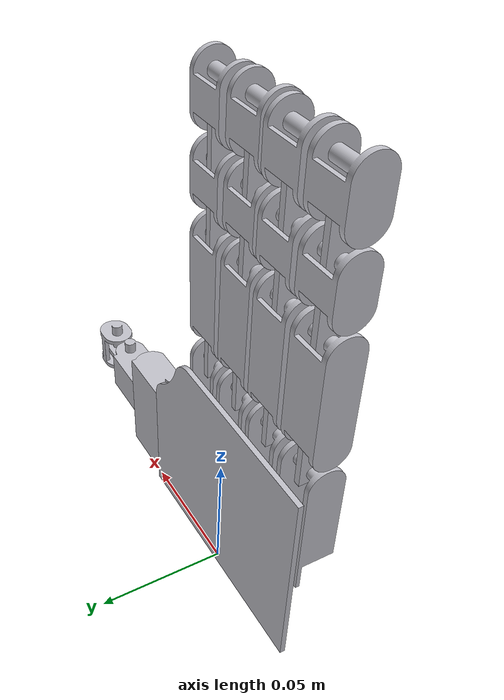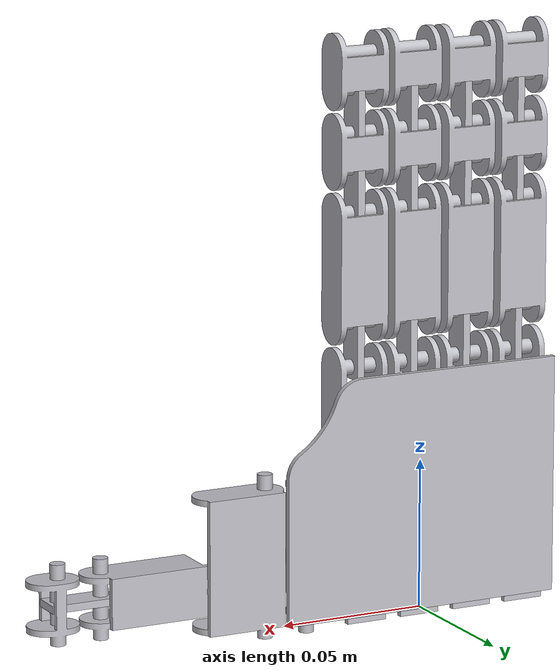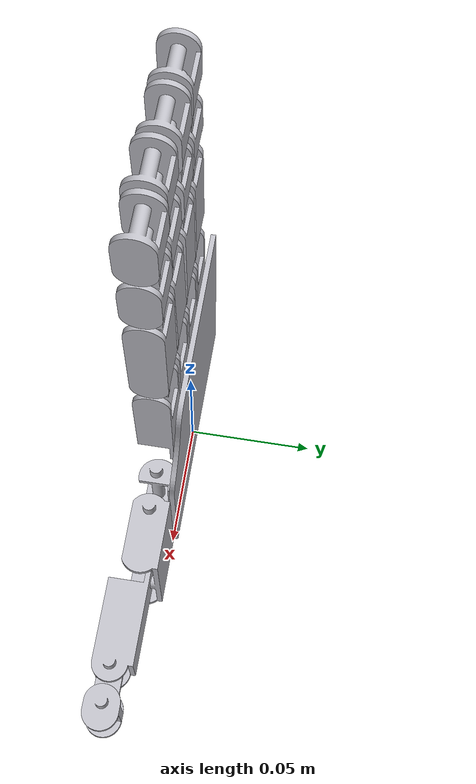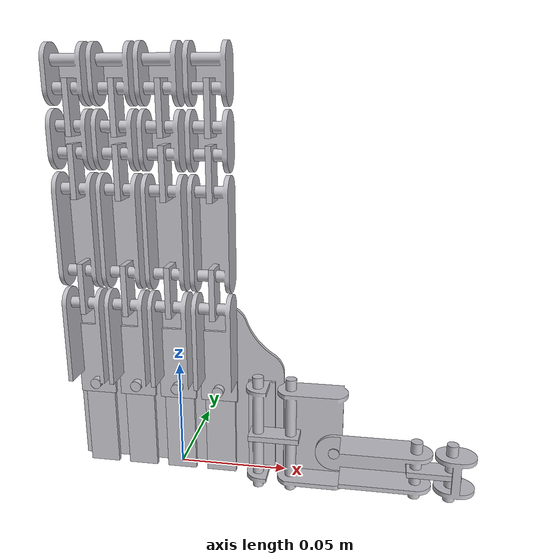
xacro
<?xml version="1.0" ?>
<robot name="hand" xmlns:xacro="http://www.ros.org/wiki/xacro">

<xacro:include filename="$(find hand_description)/urdf/materials.xacro" />
<xacro:include filename="$(find hand_description)/urdf/hand.trans" />
<xacro:include filename="$(find hand_description)/urdf/hand.gazebo" />
<link name="base_link">
  <inertial>
    <origin rpy="0 0 0" xyz="-0.0018927237158815745 0.0009999999999999855 0.038608291526940605"/>
    <mass value="0.1176699159976567"/>
    <inertia ixx="6e-05" ixy="-0.0" ixz="7e-06" iyy="0.000149" iyz="0.0" izz="8.9e-05"/>
  </inertial>
  <visual>
    <origin rpy="0 0 0" xyz="0 0 0"/>
    <geometry>
      <mesh filename="package://hand_description/meshes/base_link.stl" scale="0.001 0.001 0.001"/>
    </geometry>
    <material name="steel_satin"/>
  </visual>
  <collision>
    <origin rpy="0 0 0" xyz="0 0 0"/>
    <geometry>
      <mesh filename="package://hand_description/meshes/base_link.stl" scale="0.001 0.001 0.001"/>
    </geometry>
  </collision>
</link>

<link name="cmc_link_v4_1">
  <inertial>
    <origin rpy="0 0 0" xyz="-0.00048645427795625945 -0.004769447524329848 -6.493517695722872e-06"/>
    <mass value="0.018416700517789007"/>
    <inertia ixx="5e-06" ixy="-0.0" ixz="0.0" iyy="5e-06" iyz="-0.0" izz="0.0"/>
  </inertial>
  <visual>
    <origin rpy="0 0 0" xyz="-0.039 0.0 -0.0225"/>
    <geometry>
      <mesh filename="package://hand_description/meshes/cmc_link_v4_1.stl" scale="0.001 0.001 0.001"/>
    </geometry>
    <material name="steel_satin"/>
  </visual>
  <collision>
    <origin rpy="0 0 0" xyz="-0.039 0.0 -0.0225"/>
    <geometry>
      <mesh filename="package://hand_description/meshes/cmc_link_v4_1.stl" scale="0.001 0.001 0.001"/>
    </geometry>
  </collision>
</link>

<link name="t_connector_1_v1_1">
  <inertial>
    <origin rpy="0 0 0" xyz="0.007499999970143861 -1.312864400526692e-11 -0.0012499999999999768"/>
    <mass value="0.00374307805216622"/>
    <inertia ixx="0.0" ixy="-0.0" ixz="-0.0" iyy="0.0" iyz="-0.0" izz="0.0"/>
  </inertial>
  <visual>
    <origin rpy="0 0 0" xyz="-0.03825 0.007 -0.0225"/>
    <geometry>
      <mesh filename="package://hand_description/meshes/t_connector_1_v1_1.stl" scale="0.001 0.001 0.001"/>
    </geometry>
    <material name="steel_satin"/>
  </visual>
  <collision>
    <origin rpy="0 0 0" xyz="-0.03825 0.007 -0.0225"/>
    <geometry>
      <mesh filename="package://hand_description/meshes/t_connector_1_v1_1.stl" scale="0.001 0.001 0.001"/>
    </geometry>
  </collision>
</link>

<link name="t_mcp_v5_1">
  <inertial>
    <origin rpy="0 0 0" xyz="0.007807400362975329 0.002936289856962501 -0.00016613310844226098"/>
    <mass value="0.03943050014537037"/>
    <inertia ixx="1.1e-05" ixy="-0.0" ixz="0.0" iyy="1.3e-05" iyz="-0.0" izz="3e-06"/>
  </inertial>
  <visual>
    <origin rpy="0 0 0" xyz="-0.05325 0.007 -0.0225"/>
    <geometry>
      <mesh filename="package://hand_description/meshes/t_mcp_v5_1.stl" scale="0.001 0.001 0.001"/>
    </geometry>
    <material name="steel_satin"/>
  </visual>
  <collision>
    <origin rpy="0 0 0" xyz="-0.05325 0.007 -0.0225"/>
    <geometry>
      <mesh filename="package://hand_description/meshes/t_mcp_v5_1.stl" scale="0.001 0.001 0.001"/>
    </geometry>
  </collision>
</link>

<link name="t_pip_link_v5_1">
  <inertial>
    <origin rpy="0 0 0" xyz="0.021556157971685322 -0.006243616814845158 2.555247680113837e-15"/>
    <mass value="0.03216718051096679"/>
    <inertia ixx="2e-06" ixy="1e-06" ixz="0.0" iyy="7e-06" iyz="-0.0" izz="6e-06"/>
  </inertial>
  <visual>
    <origin rpy="0 0 0" xyz="-0.072947 0.004197 -0.014"/>
    <geometry>
      <mesh filename="package://hand_description/meshes/t_pip_link_v5_1.stl" scale="0.001 0.001 0.001"/>
    </geometry>
    <material name="steel_satin"/>
  </visual>
  <collision>
    <origin rpy="0 0 0" xyz="-0.072947 0.004197 -0.014"/>
    <geometry>
      <mesh filename="package://hand_description/meshes/t_pip_link_v5_1.stl" scale="0.001 0.001 0.001"/>
    </geometry>
  </collision>
</link>

<link name="t_connector_2_v1_1">
  <inertial>
    <origin rpy="0 0 0" xyz="0.00749969926025644 3.0084577047270744e-07 -0.0002499999999999603"/>
    <mass value="0.00374307805216622"/>
    <inertia ixx="0.0" ixy="0.0" ixz="-0.0" iyy="0.0" iyz="-0.0" izz="0.0"/>
  </inertial>
  <visual>
    <origin rpy="0 0 0" xyz="-0.108947 0.013197 -0.014"/>
    <geometry>
      <mesh filename="package://hand_description/meshes/t_connector_2_v1_1.stl" scale="0.001 0.001 0.001"/>
    </geometry>
    <material name="steel_satin"/>
  </visual>
  <collision>
    <origin rpy="0 0 0" xyz="-0.108947 0.013197 -0.014"/>
    <geometry>
      <mesh filename="package://hand_description/meshes/t_connector_2_v1_1.stl" scale="0.001 0.001 0.001"/>
    </geometry>
  </collision>
</link>

<link name="t_tip_v2_1">
  <inertial>
    <origin rpy="0 0 0" xyz="0.001140939821871606 7.444969044555216e-08 0.0015000000000000378"/>
    <mass value="0.011962131611831003"/>
    <inertia ixx="1e-06" ixy="-0.0" ixz="0.0" iyy="1e-06" iyz="0.0" izz="0.0"/>
  </inertial>
  <visual>
    <origin rpy="0 0 0" xyz="-0.123947 0.013197 -0.0125"/>
    <geometry>
      <mesh filename="package://hand_description/meshes/t_tip_v2_1.stl" scale="0.001 0.001 0.001"/>
    </geometry>
    <material name="steel_satin"/>
  </visual>
  <collision>
    <origin rpy="0 0 0" xyz="-0.123947 0.013197 -0.0125"/>
    <geometry>
      <mesh filename="package://hand_description/meshes/t_tip_v2_1.stl" scale="0.001 0.001 0.001"/>
    </geometry>
  </collision>
</link>

<link name="i_mcp_yaw_link_v1_1">
  <inertial>
    <origin rpy="0 0 0" xyz="-3.172462292866385e-14 -0.0012359787607253364 0.0005366094686043744"/>
    <mass value="0.011430485562037091"/>
    <inertia ixx="2e-06" ixy="-0.0" ixz="0.0" iyy="3e-06" iyz="0.0" izz="0.0"/>
  </inertial>
  <visual>
    <origin rpy="0 0 0" xyz="-0.0195 0.0 -0.0225"/>
    <geometry>
      <mesh filename="package://hand_description/meshes/i_mcp_yaw_link_v1_1.stl" scale="0.001 0.001 0.001"/>
    </geometry>
    <material name="steel_satin"/>
  </visual>
  <collision>
    <origin rpy="0 0 0" xyz="-0.0195 0.0 -0.0225"/>
    <geometry>
      <mesh filename="package://hand_description/meshes/i_mcp_yaw_link_v1_1.stl" scale="0.001 0.001 0.001"/>
    </geometry>
  </collision>
</link>

<link name="i_mcp_pitch_link_v1_1">
  <inertial>
    <origin rpy="0 0 0" xyz="-4.586608870482678e-15 -0.005952105069446156 0.02420829596799528"/>
    <mass value="0.026330610364773934"/>
    <inertia ixx="5e-06" ixy="0.0" ixz="-0.0" iyy="6e-06" iyz="0.0" izz="2e-06"/>
  </inertial>
  <visual>
    <origin rpy="0 0 0" xyz="-0.0195 0.002 -0.0405"/>
    <geometry>
      <mesh filename="package://hand_description/meshes/i_mcp_pitch_link_v1_1.stl" scale="0.001 0.001 0.001"/>
    </geometry>
    <material name="steel_satin"/>
  </visual>
  <collision>
    <origin rpy="0 0 0" xyz="-0.0195 0.002 -0.0405"/>
    <geometry>
      <mesh filename="package://hand_description/meshes/i_mcp_pitch_link_v1_1.stl" scale="0.001 0.001 0.001"/>
    </geometry>
  </collision>
</link>

<link name="i_connector_1_v1_1">
  <inertial>
    <origin rpy="0 0 0" xyz="0.0002500000000000002 -3.469446951953614e-17 0.007499999970251525"/>
    <mass value="0.00374307805216622"/>
    <inertia ixx="0.0" ixy="0.0" ixz="0.0" iyy="0.0" iyz="0.0" izz="0.0"/>
  </inertial>
  <visual>
    <origin rpy="0 0 0" xyz="-0.0195 0.00925 -0.0815"/>
    <geometry>
      <mesh filename="package://hand_description/meshes/i_connector_1_v1_1.stl" scale="0.001 0.001 0.001"/>
    </geometry>
    <material name="steel_satin"/>
  </visual>
  <collision>
    <origin rpy="0 0 0" xyz="-0.0195 0.00925 -0.0815"/>
    <geometry>
      <mesh filename="package://hand_description/meshes/i_connector_1_v1_1.stl" scale="0.001 0.001 0.001"/>
    </geometry>
  </collision>
</link>

<link name="i_pip_pitch_link_v4_1">
  <inertial>
    <origin rpy="0 0 0" xyz="0.0010000000000000044 0.001096507521878223 0.018000000026317478"/>
    <mass value="0.0314105238001653"/>
    <inertia ixx="7e-06" ixy="-0.0" ixz="0.0" iyy="8e-06" iyz="-0.0" izz="2e-06"/>
  </inertial>
  <visual>
    <origin rpy="0 0 0" xyz="-0.0185 0.00925 -0.0965"/>
    <geometry>
      <mesh filename="package://hand_description/meshes/i_pip_pitch_link_v4_1.stl" scale="0.001 0.001 0.001"/>
    </geometry>
    <material name="steel_satin"/>
  </visual>
  <collision>
    <origin rpy="0 0 0" xyz="-0.0185 0.00925 -0.0965"/>
    <geometry>
      <mesh filename="package://hand_description/meshes/i_pip_pitch_link_v4_1.stl" scale="0.001 0.001 0.001"/>
    </geometry>
  </collision>
</link>

<link name="i_connector_2_v1_1">
  <inertial>
    <origin rpy="0 0 0" xyz="0.0002500000000000002 -5.0306980803327406e-17 0.007499999970251553"/>
    <mass value="0.00374307805216622"/>
    <inertia ixx="0.0" ixy="-0.0" ixz="0.0" iyy="0.0" iyz="0.0" izz="0.0"/>
  </inertial>
  <visual>
    <origin rpy="0 0 0" xyz="-0.0195 0.00925 -0.1325"/>
    <geometry>
      <mesh filename="package://hand_description/meshes/i_connector_2_v1_1.stl" scale="0.001 0.001 0.001"/>
    </geometry>
    <material name="steel_satin"/>
  </visual>
  <collision>
    <origin rpy="0 0 0" xyz="-0.0195 0.00925 -0.1325"/>
    <geometry>
      <mesh filename="package://hand_description/meshes/i_connector_2_v1_1.stl" scale="0.001 0.001 0.001"/>
    </geometry>
  </collision>
</link>

<link name="i_dip_link_v2_1">
  <inertial>
    <origin rpy="0 0 0" xyz="0.0010000228538777876 0.000633326000430515 0.005499983676315989"/>
    <mass value="0.0165936992661325"/>
    <inertia ixx="1e-06" ixy="0.0" ixz="0.0" iyy="1e-06" iyz="-0.0" izz="1e-06"/>
  </inertial>
  <visual>
    <origin rpy="0 0 0" xyz="-0.0185 0.00925 -0.1475"/>
    <geometry>
      <mesh filename="package://hand_description/meshes/i_dip_link_v2_1.stl" scale="0.001 0.001 0.001"/>
    </geometry>
    <material name="steel_satin"/>
  </visual>
  <collision>
    <origin rpy="0 0 0" xyz="-0.0185 0.00925 -0.1475"/>
    <geometry>
      <mesh filename="package://hand_description/meshes/i_dip_link_v2_1.stl" scale="0.001 0.001 0.001"/>
    </geometry>
  </collision>
</link>

<link name="i_connector_3_v1_1">
  <inertial>
    <origin rpy="0 0 0" xyz="0.00025000000000001063 -7.632783294297951e-17 0.007499999970251553"/>
    <mass value="0.00374307805216622"/>
    <inertia ixx="0.0" ixy="-0.0" ixz="0.0" iyy="0.0" iyz="0.0" izz="0.0"/>
  </inertial>
  <visual>
    <origin rpy="0 0 0" xyz="-0.0195 0.00925 -0.1585"/>
    <geometry>
      <mesh filename="package://hand_description/meshes/i_connector_3_v1_1.stl" scale="0.001 0.001 0.001"/>
    </geometry>
    <material name="steel_satin"/>
  </visual>
  <collision>
    <origin rpy="0 0 0" xyz="-0.0195 0.00925 -0.1585"/>
    <geometry>
      <mesh filename="package://hand_description/meshes/i_connector_3_v1_1.stl" scale="0.001 0.001 0.001"/>
    </geometry>
  </collision>
</link>

<link name="i_tip_link_v2_1">
  <inertial>
    <origin rpy="0 0 0" xyz="-0.0014999771461222076 0.0006333260004305029 0.005499983676315989"/>
    <mass value="0.0165936992661325"/>
    <inertia ixx="1e-06" ixy="0.0" ixz="0.0" iyy="1e-06" iyz="-0.0" izz="1e-06"/>
  </inertial>
  <visual>
    <origin rpy="0 0 0" xyz="-0.021 0.00925 -0.1735"/>
    <geometry>
      <mesh filename="package://hand_description/meshes/i_tip_link_v2_1.stl" scale="0.001 0.001 0.001"/>
    </geometry>
    <material name="steel_satin"/>
  </visual>
  <collision>
    <origin rpy="0 0 0" xyz="-0.021 0.00925 -0.1735"/>
    <geometry>
      <mesh filename="package://hand_description/meshes/i_tip_link_v2_1.stl" scale="0.001 0.001 0.001"/>
    </geometry>
  </collision>
</link>

<link name="m_mcp_yaw_link_v1_1">
  <inertial>
    <origin rpy="0 0 0" xyz="1.7623359342441685e-14 -0.0012359787607253386 0.0005366094686043675"/>
    <mass value="0.011430485562037091"/>
    <inertia ixx="2e-06" ixy="0.0" ixz="-0.0" iyy="3e-06" iyz="0.0" izz="0.0"/>
  </inertial>
  <visual>
    <origin rpy="0 0 0" xyz="-0.0 0.0 -0.0225"/>
    <geometry>
      <mesh filename="package://hand_description/meshes/m_mcp_yaw_link_v1_1.stl" scale="0.001 0.001 0.001"/>
    </geometry>
    <material name="steel_satin"/>
  </visual>
  <collision>
    <origin rpy="0 0 0" xyz="-0.0 0.0 -0.0225"/>
    <geometry>
      <mesh filename="package://hand_description/meshes/m_mcp_yaw_link_v1_1.stl" scale="0.001 0.001 0.001"/>
    </geometry>
  </collision>
</link>

<link name="m_mcp_pitch_link_v1_1">
  <inertial>
    <origin rpy="0 0 0" xyz="-4.5964789723509935e-15 -0.005952105069446156 0.024208295967995265"/>
    <mass value="0.026330610364773934"/>
    <inertia ixx="5e-06" ixy="0.0" ixz="-0.0" iyy="6e-06" iyz="0.0" izz="2e-06"/>
  </inertial>
  <visual>
    <origin rpy="0 0 0" xyz="0.0 0.002 -0.0405"/>
    <geometry>
      <mesh filename="package://hand_description/meshes/m_mcp_pitch_link_v1_1.stl" scale="0.001 0.001 0.001"/>
    </geometry>
    <material name="steel_satin"/>
  </visual>
  <collision>
    <origin rpy="0 0 0" xyz="0.0 0.002 -0.0405"/>
    <geometry>
      <mesh filename="package://hand_description/meshes/m_mcp_pitch_link_v1_1.stl" scale="0.001 0.001 0.001"/>
    </geometry>
  </collision>
</link>

<link name="m_connector_1_v1_1">
  <inertial>
    <origin rpy="0 0 0" xyz="0.00024999999999998857 -1.0581813203458523e-16 0.007499999970251525"/>
    <mass value="0.00374307805216622"/>
    <inertia ixx="0.0" ixy="-0.0" ixz="-0.0" iyy="0.0" iyz="0.0" izz="0.0"/>
  </inertial>
  <visual>
    <origin rpy="0 0 0" xyz="0.0 0.00925 -0.0815"/>
    <geometry>
      <mesh filename="package://hand_description/meshes/m_connector_1_v1_1.stl" scale="0.001 0.001 0.001"/>
    </geometry>
    <material name="steel_satin"/>
  </visual>
  <collision>
    <origin rpy="0 0 0" xyz="0.0 0.00925 -0.0815"/>
    <geometry>
      <mesh filename="package://hand_description/meshes/m_connector_1_v1_1.stl" scale="0.001 0.001 0.001"/>
    </geometry>
  </collision>
</link>

<link name="m_pip_pitch_link_v2_1">
  <inertial>
    <origin rpy="0 0 0" xyz="-0.0015000000000000044 0.0009393881307711328 0.018008883353284405"/>
    <mass value="0.0314105238001653"/>
    <inertia ixx="7e-06" ixy="-0.0" ixz="0.0" iyy="8e-06" iyz="0.0" izz="2e-06"/>
  </inertial>
  <visual>
    <origin rpy="0 0 0" xyz="-0.0015 0.00925 -0.0965"/>
    <geometry>
      <mesh filename="package://hand_description/meshes/m_pip_pitch_link_v2_1.stl" scale="0.001 0.001 0.001"/>
    </geometry>
    <material name="steel_satin"/>
  </visual>
  <collision>
    <origin rpy="0 0 0" xyz="-0.0015 0.00925 -0.0965"/>
    <geometry>
      <mesh filename="package://hand_description/meshes/m_pip_pitch_link_v2_1.stl" scale="0.001 0.001 0.001"/>
    </geometry>
  </collision>
</link>

<link name="m_connector_2_v1_1">
  <inertial>
    <origin rpy="0 0 0" xyz="0.00025000000000000857 -6.560429417987179e-05 0.007499343623543014"/>
    <mass value="0.00374307805216622"/>
    <inertia ixx="0.0" ixy="-0.0" ixz="0.0" iyy="0.0" iyz="0.0" izz="0.0"/>
  </inertial>
  <visual>
    <origin rpy="0 0 0" xyz="-0.0 0.009564 -0.132499"/>
    <geometry>
      <mesh filename="package://hand_description/meshes/m_connector_2_v1_1.stl" scale="0.001 0.001 0.001"/>
    </geometry>
    <material name="steel_satin"/>
  </visual>
  <collision>
    <origin rpy="0 0 0" xyz="-0.0 0.009564 -0.132499"/>
    <geometry>
      <mesh filename="package://hand_description/meshes/m_connector_2_v1_1.stl" scale="0.001 0.001 0.001"/>
    </geometry>
  </collision>
</link>

<link name="m_dip_link_v2_1">
  <inertial>
    <origin rpy="0 0 0" xyz="-0.0014999771461222094 0.0005852527718479845 0.005505359071886956"/>
    <mass value="0.0165936992661325"/>
    <inertia ixx="1e-06" ixy="0.0" ixz="0.0" iyy="1e-06" iyz="0.0" izz="1e-06"/>
  </inertial>
  <visual>
    <origin rpy="0 0 0" xyz="-0.0015 0.009695 -0.147498"/>
    <geometry>
      <mesh filename="package://hand_description/meshes/m_dip_link_v2_1.stl" scale="0.001 0.001 0.001"/>
    </geometry>
    <material name="steel_satin"/>
  </visual>
  <collision>
    <origin rpy="0 0 0" xyz="-0.0015 0.009695 -0.147498"/>
    <geometry>
      <mesh filename="package://hand_description/meshes/m_dip_link_v2_1.stl" scale="0.001 0.001 0.001"/>
    </geometry>
  </collision>
</link>

<link name="m_connector_3_v1_1">
  <inertial>
    <origin rpy="0 0 0" xyz="0.0002499999999999933 -6.549421713753119e-05 0.00749935362321158"/>
    <mass value="0.00374307805216622"/>
    <inertia ixx="0.0" ixy="0.0" ixz="-0.0" iyy="0.0" iyz="0.0" izz="0.0"/>
  </inertial>
  <visual>
    <origin rpy="0 0 0" xyz="-0.0 0.009791 -0.158498"/>
    <geometry>
      <mesh filename="package://hand_description/meshes/m_connector_3_v1_1.stl" scale="0.001 0.001 0.001"/>
    </geometry>
    <material name="steel_satin"/>
  </visual>
  <collision>
    <origin rpy="0 0 0" xyz="-0.0 0.009791 -0.158498"/>
    <geometry>
      <mesh filename="package://hand_description/meshes/m_connector_3_v1_1.stl" scale="0.001 0.001 0.001"/>
    </geometry>
  </collision>
</link>

<link name="m_tip_link_v2_1">
  <inertial>
    <origin rpy="0 0 0" xyz="-0.0014999771461222285 0.0005853628488903233 0.005505369071555438"/>
    <mass value="0.0165936992661325"/>
    <inertia ixx="1e-06" ixy="0.0" ixz="0.0" iyy="1e-06" iyz="0.0" izz="1e-06"/>
  </inertial>
  <visual>
    <origin rpy="0 0 0" xyz="-0.0015 0.009922 -0.173497"/>
    <geometry>
      <mesh filename="package://hand_description/meshes/m_tip_link_v2_1.stl" scale="0.001 0.001 0.001"/>
    </geometry>
    <material name="steel_satin"/>
  </visual>
  <collision>
    <origin rpy="0 0 0" xyz="-0.0015 0.009922 -0.173497"/>
    <geometry>
      <mesh filename="package://hand_description/meshes/m_tip_link_v2_1.stl" scale="0.001 0.001 0.001"/>
    </geometry>
  </collision>
</link>

<link name="r_mcp_yaw_link_v1_1">
  <inertial>
    <origin rpy="0 0 0" xyz="-3.17280923756158e-14 -0.0012359787607253358 0.0005366094686043987"/>
    <mass value="0.011430485562037091"/>
    <inertia ixx="2e-06" ixy="-0.0" ixz="0.0" iyy="3e-06" iyz="0.0" izz="0.0"/>
  </inertial>
  <visual>
    <origin rpy="0 0 0" xyz="0.0195 0.0 -0.0225"/>
    <geometry>
      <mesh filename="package://hand_description/meshes/r_mcp_yaw_link_v1_1.stl" scale="0.001 0.001 0.001"/>
    </geometry>
    <material name="steel_satin"/>
  </visual>
  <collision>
    <origin rpy="0 0 0" xyz="0.0195 0.0 -0.0225"/>
    <geometry>
      <mesh filename="package://hand_description/meshes/r_mcp_yaw_link_v1_1.stl" scale="0.001 0.001 0.001"/>
    </geometry>
  </collision>
</link>

<link name="r_mcp_pitch_link_v1_1">
  <inertial>
    <origin rpy="0 0 0" xyz="-4.593547764386585e-15 -0.005952105069446156 0.024208295967995307"/>
    <mass value="0.026330610364773934"/>
    <inertia ixx="5e-06" ixy="0.0" ixz="-0.0" iyy="6e-06" iyz="0.0" izz="2e-06"/>
  </inertial>
  <visual>
    <origin rpy="0 0 0" xyz="0.0195 0.002 -0.0405"/>
    <geometry>
      <mesh filename="package://hand_description/meshes/r_mcp_pitch_link_v1_1.stl" scale="0.001 0.001 0.001"/>
    </geometry>
    <material name="steel_satin"/>
  </visual>
  <collision>
    <origin rpy="0 0 0" xyz="0.0195 0.002 -0.0405"/>
    <geometry>
      <mesh filename="package://hand_description/meshes/r_mcp_pitch_link_v1_1.stl" scale="0.001 0.001 0.001"/>
    </geometry>
  </collision>
</link>

<link name="r_connector_1_v1_1">
  <inertial>
    <origin rpy="0 0 0" xyz="0.00024999999999999675 -2.6020852139652106e-17 0.007499999970251553"/>
    <mass value="0.00374307805216622"/>
    <inertia ixx="0.0" ixy="-0.0" ixz="-0.0" iyy="0.0" iyz="0.0" izz="0.0"/>
  </inertial>
  <visual>
    <origin rpy="0 0 0" xyz="0.0195 0.00925 -0.0815"/>
    <geometry>
      <mesh filename="package://hand_description/meshes/r_connector_1_v1_1.stl" scale="0.001 0.001 0.001"/>
    </geometry>
    <material name="steel_satin"/>
  </visual>
  <collision>
    <origin rpy="0 0 0" xyz="0.0195 0.00925 -0.0815"/>
    <geometry>
      <mesh filename="package://hand_description/meshes/r_connector_1_v1_1.stl" scale="0.001 0.001 0.001"/>
    </geometry>
  </collision>
</link>

<link name="r_pip_pitch_link_v2_1">
  <inertial>
    <origin rpy="0 0 0" xyz="-0.001500000000000029 0.00109650752187823 0.017999999914078108"/>
    <mass value="0.0314105238001653"/>
    <inertia ixx="7e-06" ixy="0.0" ixz="-0.0" iyy="8e-06" iyz="0.0" izz="2e-06"/>
  </inertial>
  <visual>
    <origin rpy="0 0 0" xyz="0.018 0.00925 -0.0965"/>
    <geometry>
      <mesh filename="package://hand_description/meshes/r_pip_pitch_link_v2_1.stl" scale="0.001 0.001 0.001"/>
    </geometry>
    <material name="steel_satin"/>
  </visual>
  <collision>
    <origin rpy="0 0 0" xyz="0.018 0.00925 -0.0965"/>
    <geometry>
      <mesh filename="package://hand_description/meshes/r_pip_pitch_link_v2_1.stl" scale="0.001 0.001 0.001"/>
    </geometry>
  </collision>
</link>

<link name="r_connector_2_v1_1">
  <inertial>
    <origin rpy="0 0 0" xyz="0.0002499999999999343 -3.122502256758253e-17 0.0074999999702514974"/>
    <mass value="0.00374307805216622"/>
    <inertia ixx="0.0" ixy="-0.0" ixz="0.0" iyy="0.0" iyz="0.0" izz="0.0"/>
  </inertial>
  <visual>
    <origin rpy="0 0 0" xyz="0.0195 0.00925 -0.1325"/>
    <geometry>
      <mesh filename="package://hand_description/meshes/r_connector_2_v1_1.stl" scale="0.001 0.001 0.001"/>
    </geometry>
    <material name="steel_satin"/>
  </visual>
  <collision>
    <origin rpy="0 0 0" xyz="0.0195 0.00925 -0.1325"/>
    <geometry>
      <mesh filename="package://hand_description/meshes/r_connector_2_v1_1.stl" scale="0.001 0.001 0.001"/>
    </geometry>
  </collision>
</link>

<link name="r_dip_link_v2_1">
  <inertial>
    <origin rpy="0 0 0" xyz="0.0010000228538776974 0.0006333260004305185 0.005499983676316045"/>
    <mass value="0.0165936992661325"/>
    <inertia ixx="1e-06" ixy="0.0" ixz="0.0" iyy="1e-06" iyz="-0.0" izz="1e-06"/>
  </inertial>
  <visual>
    <origin rpy="0 0 0" xyz="0.0205 0.00925 -0.1475"/>
    <geometry>
      <mesh filename="package://hand_description/meshes/r_dip_link_v2_1.stl" scale="0.001 0.001 0.001"/>
    </geometry>
    <material name="steel_satin"/>
  </visual>
  <collision>
    <origin rpy="0 0 0" xyz="0.0205 0.00925 -0.1475"/>
    <geometry>
      <mesh filename="package://hand_description/meshes/r_dip_link_v2_1.stl" scale="0.001 0.001 0.001"/>
    </geometry>
  </collision>
</link>

<link name="r_connector_3_v1_1">
  <inertial>
    <origin rpy="0 0 0" xyz="0.00024999999999991 3.122502256758253e-17 0.0074999999702516085"/>
    <mass value="0.00374307805216622"/>
    <inertia ixx="0.0" ixy="0.0" ixz="0.0" iyy="0.0" iyz="0.0" izz="0.0"/>
  </inertial>
  <visual>
    <origin rpy="0 0 0" xyz="0.0195 0.00925 -0.1585"/>
    <geometry>
      <mesh filename="package://hand_description/meshes/r_connector_3_v1_1.stl" scale="0.001 0.001 0.001"/>
    </geometry>
    <material name="steel_satin"/>
  </visual>
  <collision>
    <origin rpy="0 0 0" xyz="0.0195 0.00925 -0.1585"/>
    <geometry>
      <mesh filename="package://hand_description/meshes/r_connector_3_v1_1.stl" scale="0.001 0.001 0.001"/>
    </geometry>
  </collision>
</link>

<link name="r_tip_link_v2_1">
  <inertial>
    <origin rpy="0 0 0" xyz="0.0010000228538776766 0.000633326000430548 0.005499983676316017"/>
    <mass value="0.0165936992661325"/>
    <inertia ixx="1e-06" ixy="0.0" ixz="0.0" iyy="1e-06" iyz="-0.0" izz="1e-06"/>
  </inertial>
  <visual>
    <origin rpy="0 0 0" xyz="0.0205 0.00925 -0.1735"/>
    <geometry>
      <mesh filename="package://hand_description/meshes/r_tip_link_v2_1.stl" scale="0.001 0.001 0.001"/>
    </geometry>
    <material name="steel_satin"/>
  </visual>
  <collision>
    <origin rpy="0 0 0" xyz="0.0205 0.00925 -0.1735"/>
    <geometry>
      <mesh filename="package://hand_description/meshes/r_tip_link_v2_1.stl" scale="0.001 0.001 0.001"/>
    </geometry>
  </collision>
</link>

<link name="s_mcp_yaw_link_v1_1">
  <inertial>
    <origin rpy="0 0 0" xyz="-3.1731561822567755e-14 -0.0012359787607253373 0.0005366094686043744"/>
    <mass value="0.011430485562037091"/>
    <inertia ixx="2e-06" ixy="-0.0" ixz="0.0" iyy="3e-06" iyz="0.0" izz="0.0"/>
  </inertial>
  <visual>
    <origin rpy="0 0 0" xyz="0.039 0.0 -0.0225"/>
    <geometry>
      <mesh filename="package://hand_description/meshes/s_mcp_yaw_link_v1_1.stl" scale="0.001 0.001 0.001"/>
    </geometry>
    <material name="steel_satin"/>
  </visual>
  <collision>
    <origin rpy="0 0 0" xyz="0.039 0.0 -0.0225"/>
    <geometry>
      <mesh filename="package://hand_description/meshes/s_mcp_yaw_link_v1_1.stl" scale="0.001 0.001 0.001"/>
    </geometry>
  </collision>
</link>

<link name="s_mcp_pitch_link_v1_1">
  <inertial>
    <origin rpy="0 0 0" xyz="-4.5727310826748635e-15 -0.005952105069446158 0.024208295967995265"/>
    <mass value="0.026330610364773934"/>
    <inertia ixx="5e-06" ixy="0.0" ixz="-0.0" iyy="6e-06" iyz="0.0" izz="2e-06"/>
  </inertial>
  <visual>
    <origin rpy="0 0 0" xyz="0.039 0.002 -0.0405"/>
    <geometry>
      <mesh filename="package://hand_description/meshes/s_mcp_pitch_link_v1_1.stl" scale="0.001 0.001 0.001"/>
    </geometry>
    <material name="steel_satin"/>
  </visual>
  <collision>
    <origin rpy="0 0 0" xyz="0.039 0.002 -0.0405"/>
    <geometry>
      <mesh filename="package://hand_description/meshes/s_mcp_pitch_link_v1_1.stl" scale="0.001 0.001 0.001"/>
    </geometry>
  </collision>
</link>

<link name="s_connector_1_v1_1">
  <inertial>
    <origin rpy="0 0 0" xyz="0.0002500000000000141 -3.9898639947466563e-17 0.007499999970143861"/>
    <mass value="0.00374307805216622"/>
    <inertia ixx="0.0" ixy="0.0" ixz="0.0" iyy="0.0" iyz="-0.0" izz="0.0"/>
  </inertial>
  <visual>
    <origin rpy="0 0 0" xyz="0.039 0.00925 -0.0815"/>
    <geometry>
      <mesh filename="package://hand_description/meshes/s_connector_1_v1_1.stl" scale="0.001 0.001 0.001"/>
    </geometry>
    <material name="steel_satin"/>
  </visual>
  <collision>
    <origin rpy="0 0 0" xyz="0.039 0.00925 -0.0815"/>
    <geometry>
      <mesh filename="package://hand_description/meshes/s_connector_1_v1_1.stl" scale="0.001 0.001 0.001"/>
    </geometry>
  </collision>
</link>

<link name="s_pip_pitch_link_v2_1">
  <inertial>
    <origin rpy="0 0 0" xyz="0.0010000000000000009 0.0010965075218782126 0.018000000026317423"/>
    <mass value="0.0314105238001653"/>
    <inertia ixx="7e-06" ixy="0.0" ixz="-0.0" iyy="8e-06" iyz="-0.0" izz="2e-06"/>
  </inertial>
  <visual>
    <origin rpy="0 0 0" xyz="0.04 0.00925 -0.0965"/>
    <geometry>
      <mesh filename="package://hand_description/meshes/s_pip_pitch_link_v2_1.stl" scale="0.001 0.001 0.001"/>
    </geometry>
    <material name="steel_satin"/>
  </visual>
  <collision>
    <origin rpy="0 0 0" xyz="0.04 0.00925 -0.0965"/>
    <geometry>
      <mesh filename="package://hand_description/meshes/s_pip_pitch_link_v2_1.stl" scale="0.001 0.001 0.001"/>
    </geometry>
  </collision>
</link>

<link name="s_connector_2_v1_1">
  <inertial>
    <origin rpy="0 0 0" xyz="0.00025000000000002104 -1.0408340855860843e-17 0.007499999970143834"/>
    <mass value="0.00374307805216622"/>
    <inertia ixx="0.0" ixy="0.0" ixz="0.0" iyy="0.0" iyz="-0.0" izz="0.0"/>
  </inertial>
  <visual>
    <origin rpy="0 0 0" xyz="0.039 0.00925 -0.1325"/>
    <geometry>
      <mesh filename="package://hand_description/meshes/s_connector_2_v1_1.stl" scale="0.001 0.001 0.001"/>
    </geometry>
    <material name="steel_satin"/>
  </visual>
  <collision>
    <origin rpy="0 0 0" xyz="0.039 0.00925 -0.1325"/>
    <geometry>
      <mesh filename="package://hand_description/meshes/s_connector_2_v1_1.stl" scale="0.001 0.001 0.001"/>
    </geometry>
  </collision>
</link>

<link name="s_dip_link_v2_1">
  <inertial>
    <origin rpy="0 0 0" xyz="0.0010000228538777495 0.0006333260004305966 0.0054999836763159615"/>
    <mass value="0.0165936992661325"/>
    <inertia ixx="1e-06" ixy="0.0" ixz="0.0" iyy="1e-06" iyz="-0.0" izz="1e-06"/>
  </inertial>
  <visual>
    <origin rpy="0 0 0" xyz="0.04 0.00925 -0.1475"/>
    <geometry>
      <mesh filename="package://hand_description/meshes/s_dip_link_v2_1.stl" scale="0.001 0.001 0.001"/>
    </geometry>
    <material name="steel_satin"/>
  </visual>
  <collision>
    <origin rpy="0 0 0" xyz="0.04 0.00925 -0.1475"/>
    <geometry>
      <mesh filename="package://hand_description/meshes/s_dip_link_v2_1.stl" scale="0.001 0.001 0.001"/>
    </geometry>
  </collision>
</link>

<link name="s_connector_3_v1_1">
  <inertial>
    <origin rpy="0 0 0" xyz="0.00025000000000005573 -5.898059818321144e-17 0.007499999970251581"/>
    <mass value="0.00374307805216622"/>
    <inertia ixx="0.0" ixy="-0.0" ixz="0.0" iyy="0.0" iyz="0.0" izz="0.0"/>
  </inertial>
  <visual>
    <origin rpy="0 0 0" xyz="0.039 0.00925 -0.1585"/>
    <geometry>
      <mesh filename="package://hand_description/meshes/s_connector_3_v1_1.stl" scale="0.001 0.001 0.001"/>
    </geometry>
    <material name="steel_satin"/>
  </visual>
  <collision>
    <origin rpy="0 0 0" xyz="0.039 0.00925 -0.1585"/>
    <geometry>
      <mesh filename="package://hand_description/meshes/s_connector_3_v1_1.stl" scale="0.001 0.001 0.001"/>
    </geometry>
  </collision>
</link>

<link name="s_tip_link_v2_1">
  <inertial>
    <origin rpy="0 0 0" xyz="0.0010000228538778189 0.0006333260004305445 0.005499983676316045"/>
    <mass value="0.0165936992661325"/>
    <inertia ixx="1e-06" ixy="0.0" ixz="0.0" iyy="1e-06" iyz="-0.0" izz="1e-06"/>
  </inertial>
  <visual>
    <origin rpy="0 0 0" xyz="0.04 0.00925 -0.1735"/>
    <geometry>
      <mesh filename="package://hand_description/meshes/s_tip_link_v2_1.stl" scale="0.001 0.001 0.001"/>
    </geometry>
    <material name="steel_satin"/>
  </visual>
  <collision>
    <origin rpy="0 0 0" xyz="0.04 0.00925 -0.1735"/>
    <geometry>
      <mesh filename="package://hand_description/meshes/s_tip_link_v2_1.stl" scale="0.001 0.001 0.001"/>
    </geometry>
  </collision>
</link>

<joint name="Rigid1" type="fixed">
  <origin rpy="0 0 0" xyz="0.039 0.0 0.0225"/>
  <parent link="base_link"/>
  <child link="cmc_link_v4_1"/>
</joint>

<joint name="t_mcp_pitch" type="continuous">
  <origin rpy="0 0 0" xyz="-0.00075 -0.007 0.0"/>
  <parent link="cmc_link_v4_1"/>
  <child link="t_connector_1_v1_1"/>
  <axis xyz="0.0 0.0 -1.0"/>
</joint>

<joint name="Rigid3" type="fixed">
  <origin rpy="0 0 0" xyz="0.015 0.0 0.0"/>
  <parent link="t_connector_1_v1_1"/>
  <child link="t_mcp_v5_1"/>
</joint>

<joint name="t_mcp_yaw" type="continuous">
  <origin rpy="0 0 0" xyz="0.019697 0.002803 -0.0085"/>
  <parent link="t_mcp_v5_1"/>
  <child link="t_pip_link_v5_1"/>
  <axis xyz="0.0 -1.0 -0.0"/>
</joint>

<joint name="t_pip_pitch" type="continuous">
  <origin rpy="0 0 0" xyz="0.036 -0.009 0.0"/>
  <parent link="t_pip_link_v5_1"/>
  <child link="t_connector_2_v1_1"/>
  <axis xyz="-0.0 0.0 -1.0"/>
</joint>

<joint name="Rigid6" type="fixed">
  <origin rpy="0 0 0" xyz="0.015 0.0 -0.0015"/>
  <parent link="t_connector_2_v1_1"/>
  <child link="t_tip_v2_1"/>
</joint>

<joint name="Rigid7" type="fixed">
  <origin rpy="0 0 0" xyz="0.0195 0.0 0.0225"/>
  <parent link="base_link"/>
  <child link="i_mcp_yaw_link_v1_1"/>
</joint>

<joint name="i_mcp_yaw" type="continuous">
  <origin rpy="0 0 0" xyz="0.0 -0.002 0.018"/>
  <parent link="i_mcp_yaw_link_v1_1"/>
  <child link="i_mcp_pitch_link_v1_1"/>
  <axis xyz="0.0 -1.0 -0.0"/>
</joint>

<joint name="i_mcp_pitch" type="continuous">
  <origin rpy="0 0 0" xyz="0.0 -0.00725 0.041"/>
  <parent link="i_mcp_pitch_link_v1_1"/>
  <child link="i_connector_1_v1_1"/>
  <axis xyz="-1.0 0.0 0.0"/>
</joint>

<joint name="Rigid11" type="fixed">
  <origin rpy="0 0 0" xyz="-0.001 0.0 0.015"/>
  <parent link="i_connector_1_v1_1"/>
  <child link="i_pip_pitch_link_v4_1"/>
</joint>

<joint name="i_pip_pitch" type="continuous">
  <origin rpy="0 0 0" xyz="0.001 0.0 0.036"/>
  <parent link="i_pip_pitch_link_v4_1"/>
  <child link="i_connector_2_v1_1"/>
  <axis xyz="-1.0 0.0 0.0"/>
</joint>

<joint name="Rigid16" type="fixed">
  <origin rpy="0 0 0" xyz="-0.001 0.0 0.015"/>
  <parent link="i_connector_2_v1_1"/>
  <child link="i_dip_link_v2_1"/>
</joint>

<joint name="i_dip_pitch" type="continuous">
  <origin rpy="0 0 0" xyz="0.001 0.0 0.011"/>
  <parent link="i_dip_link_v2_1"/>
  <child link="i_connector_3_v1_1"/>
  <axis xyz="1.0 -0.0 -0.0"/>
</joint>

<joint name="Rigid18" type="fixed">
  <origin rpy="0 0 0" xyz="0.0015 0.0 0.015"/>
  <parent link="i_connector_3_v1_1"/>
  <child link="i_tip_link_v2_1"/>
</joint>

<joint name="Rigid19" type="fixed">
  <origin rpy="0 0 0" xyz="0.0 0.0 0.0225"/>
  <parent link="base_link"/>
  <child link="m_mcp_yaw_link_v1_1"/>
</joint>

<joint name="m_mcp_yaw" type="continuous">
  <origin rpy="0 0 0" xyz="-0.0 -0.002 0.018"/>
  <parent link="m_mcp_yaw_link_v1_1"/>
  <child link="m_mcp_pitch_link_v1_1"/>
  <axis xyz="0.0 -1.0 -0.0"/>
</joint>

<joint name="m_mcp_pitch" type="continuous">
  <origin rpy="0 0 0" xyz="0.0 -0.00725 0.041"/>
  <parent link="m_mcp_pitch_link_v1_1"/>
  <child link="m_connector_1_v1_1"/>
  <axis xyz="-1.0 -0.0 -0.0"/>
</joint>

<joint name="Rigid22" type="fixed">
  <origin rpy="0 0 0" xyz="0.0015 0.0 0.015"/>
  <parent link="m_connector_1_v1_1"/>
  <child link="m_pip_pitch_link_v2_1"/>
</joint>

<joint name="m_pip_pitch" type="continuous">
  <origin rpy="0 0 0" xyz="-0.0015 -0.000314 0.035999"/>
  <parent link="m_pip_pitch_link_v2_1"/>
  <child link="m_connector_2_v1_1"/>
  <axis xyz="-1.0 0.0 0.0"/>
</joint>

<joint name="Rigid24" type="fixed">
  <origin rpy="0 0 0" xyz="0.0015 -0.000131 0.014999"/>
  <parent link="m_connector_2_v1_1"/>
  <child link="m_dip_link_v2_1"/>
</joint>

<joint name="m_dip_pitch" type="continuous">
  <origin rpy="0 0 0" xyz="-0.0015 -9.6e-05 0.011"/>
  <parent link="m_dip_link_v2_1"/>
  <child link="m_connector_3_v1_1"/>
  <axis xyz="1.0 -0.0 -0.0"/>
</joint>

<joint name="Rigid26" type="fixed">
  <origin rpy="0 0 0" xyz="0.0015 -0.000131 0.014999"/>
  <parent link="m_connector_3_v1_1"/>
  <child link="m_tip_link_v2_1"/>
</joint>

<joint name="Rigid27" type="fixed">
  <origin rpy="0 0 0" xyz="-0.0195 0.0 0.0225"/>
  <parent link="base_link"/>
  <child link="r_mcp_yaw_link_v1_1"/>
</joint>

<joint name="r_mcp_yaw" type="continuous">
  <origin rpy="0 0 0" xyz="0.0 -0.002 0.018"/>
  <parent link="r_mcp_yaw_link_v1_1"/>
  <child link="r_mcp_pitch_link_v1_1"/>
  <axis xyz="0.0 -1.0 -0.0"/>
</joint>

<joint name="r_mcp_pitch" type="continuous">
  <origin rpy="0 0 0" xyz="0.0 -0.00725 0.041"/>
  <parent link="r_mcp_pitch_link_v1_1"/>
  <child link="r_connector_1_v1_1"/>
  <axis xyz="-1.0 0.0 0.0"/>
</joint>

<joint name="Rigid30" type="fixed">
  <origin rpy="0 0 0" xyz="0.0015 0.0 0.015"/>
  <parent link="r_connector_1_v1_1"/>
  <child link="r_pip_pitch_link_v2_1"/>
</joint>

<joint name="r_pip_pitch" type="continuous">
  <origin rpy="0 0 0" xyz="-0.0015 0.0 0.036"/>
  <parent link="r_pip_pitch_link_v2_1"/>
  <child link="r_connector_2_v1_1"/>
  <axis xyz="1.0 0.0 0.0"/>
</joint>

<joint name="Rigid32" type="fixed">
  <origin rpy="0 0 0" xyz="-0.001 0.0 0.015"/>
  <parent link="r_connector_2_v1_1"/>
  <child link="r_dip_link_v2_1"/>
</joint>

<joint name="r_dip_pitch" type="continuous">
  <origin rpy="0 0 0" xyz="0.001 0.0 0.011"/>
  <parent link="r_dip_link_v2_1"/>
  <child link="r_connector_3_v1_1"/>
  <axis xyz="1.0 0.0 0.0"/>
</joint>

<joint name="Rigid35" type="fixed">
  <origin rpy="0 0 0" xyz="-0.001 0.0 0.015"/>
  <parent link="r_connector_3_v1_1"/>
  <child link="r_tip_link_v2_1"/>
</joint>

<joint name="Rigid36" type="fixed">
  <origin rpy="0 0 0" xyz="-0.039 0.0 0.0225"/>
  <parent link="base_link"/>
  <child link="s_mcp_yaw_link_v1_1"/>
</joint>

<joint name="s_mcp_yaw" type="continuous">
  <origin rpy="0 0 0" xyz="0.0 -0.002 0.018"/>
  <parent link="s_mcp_yaw_link_v1_1"/>
  <child link="s_mcp_pitch_link_v1_1"/>
  <axis xyz="-0.0 -1.0 -0.0"/>
</joint>

<joint name="s_mcp_pitch" type="continuous">
  <origin rpy="0 0 0" xyz="0.0 -0.00725 0.041"/>
  <parent link="s_mcp_pitch_link_v1_1"/>
  <child link="s_connector_1_v1_1"/>
  <axis xyz="-1.0 0.0 0.0"/>
</joint>

<joint name="Rigid39" type="fixed">
  <origin rpy="0 0 0" xyz="-0.001 0.0 0.015"/>
  <parent link="s_connector_1_v1_1"/>
  <child link="s_pip_pitch_link_v2_1"/>
</joint>

<joint name="s_pip_pitch" type="continuous">
  <origin rpy="0 0 0" xyz="0.001 0.0 0.036"/>
  <parent link="s_pip_pitch_link_v2_1"/>
  <child link="s_connector_2_v1_1"/>
  <axis xyz="-1.0 -0.0 -0.0"/>
</joint>

<joint name="Rigid41" type="fixed">
  <origin rpy="0 0 0" xyz="-0.001 0.0 0.015"/>
  <parent link="s_connector_2_v1_1"/>
  <child link="s_dip_link_v2_1"/>
</joint>

<joint name="s_dip_pitch" type="continuous">
  <origin rpy="0 0 0" xyz="0.001 0.0 0.011"/>
  <parent link="s_dip_link_v2_1"/>
  <child link="s_connector_3_v1_1"/>
  <axis xyz="1.0 -0.0 -0.0"/>
</joint>

<joint name="Rigid43" type="fixed">
  <origin rpy="0 0 0" xyz="-0.001 0.0 0.015"/>
  <parent link="s_connector_3_v1_1"/>
  <child link="s_tip_link_v2_1"/>
</joint>

</robot>

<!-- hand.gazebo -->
<robot name="hand" xmlns:xacro="http://www.ros.org/wiki/xacro" >

<xacro:property name="body_color" value="Gazebo/Silver" />

<gazebo>
  <plugin filename="libgazebo_ros_control.so" name="control"/>
</gazebo>
<gazebo reference="base_link">
  <material>${body_color}</material>
  <mu1>0.2</mu1>
  <mu2>0.2</mu2>
  <selfCollide>true</selfCollide>
  <gravity>true</gravity>
</gazebo>

<gazebo reference="cmc_link_v4_1">
  <material>${body_color}</material>
  <mu1>0.2</mu1>
  <mu2>0.2</mu2>
  <selfCollide>true</selfCollide>
</gazebo>

<gazebo reference="t_connector_1_v1_1">
  <material>${body_color}</material>
  <mu1>0.2</mu1>
  <mu2>0.2</mu2>
  <selfCollide>true</selfCollide>
</gazebo>

<gazebo reference="t_mcp_v5_1">
  <material>${body_color}</material>
  <mu1>0.2</mu1>
  <mu2>0.2</mu2>
  <selfCollide>true</selfCollide>
</gazebo>

<gazebo reference="t_pip_link_v5_1">
  <material>${body_color}</material>
  <mu1>0.2</mu1>
  <mu2>0.2</mu2>
  <selfCollide>true</selfCollide>
</gazebo>

<gazebo reference="t_connector_2_v1_1">
  <material>${body_color}</material>
  <mu1>0.2</mu1>
  <mu2>0.2</mu2>
  <selfCollide>true</selfCollide>
</gazebo>

<gazebo reference="t_tip_v2_1">
  <material>${body_color}</material>
  <mu1>0.2</mu1>
  <mu2>0.2</mu2>
  <selfCollide>true</selfCollide>
</gazebo>

<gazebo reference="i_mcp_yaw_link_v1_1">
  <material>${body_color}</material>
  <mu1>0.2</mu1>
  <mu2>0.2</mu2>
  <selfCollide>true</selfCollide>
</gazebo>

<gazebo reference="i_mcp_pitch_link_v1_1">
  <material>${body_color}</material>
  <mu1>0.2</mu1>
  <mu2>0.2</mu2>
  <selfCollide>true</selfCollide>
</gazebo>

<gazebo reference="i_connector_1_v1_1">
  <material>${body_color}</material>
  <mu1>0.2</mu1>
  <mu2>0.2</mu2>
  <selfCollide>true</selfCollide>
</gazebo>

<gazebo reference="i_pip_pitch_link_v4_1">
  <material>${body_color}</material>
  <mu1>0.2</mu1>
  <mu2>0.2</mu2>
  <selfCollide>true</selfCollide>
</gazebo>

<gazebo reference="i_connector_2_v1_1">
  <material>${body_color}</material>
  <mu1>0.2</mu1>
  <mu2>0.2</mu2>
  <selfCollide>true</selfCollide>
</gazebo>

<gazebo reference="i_dip_link_v2_1">
  <material>${body_color}</material>
  <mu1>0.2</mu1>
  <mu2>0.2</mu2>
  <selfCollide>true</selfCollide>
</gazebo>

<gazebo reference="i_connector_3_v1_1">
  <material>${body_color}</material>
  <mu1>0.2</mu1>
  <mu2>0.2</mu2>
  <selfCollide>true</selfCollide>
</gazebo>

<gazebo reference="i_tip_link_v2_1">
  <material>${body_color}</material>
  <mu1>0.2</mu1>
  <mu2>0.2</mu2>
  <selfCollide>true</selfCollide>
</gazebo>

<gazebo reference="m_mcp_yaw_link_v1_1">
  <material>${body_color}</material>
  <mu1>0.2</mu1>
  <mu2>0.2</mu2>
  <selfCollide>true</selfCollide>
</gazebo>

<gazebo reference="m_mcp_pitch_link_v1_1">
  <material>${body_color}</material>
  <mu1>0.2</mu1>
  <mu2>0.2</mu2>
  <selfCollide>true</selfCollide>
</gazebo>

<gazebo reference="m_connector_1_v1_1">
  <material>${body_color}</material>
  <mu1>0.2</mu1>
  <mu2>0.2</mu2>
  <selfCollide>true</selfCollide>
</gazebo>

<gazebo reference="m_pip_pitch_link_v2_1">
  <material>${body_color}</material>
  <mu1>0.2</mu1>
  <mu2>0.2</mu2>
  <selfCollide>true</selfCollide>
</gazebo>

<gazebo reference="m_connector_2_v1_1">
  <material>${body_color}</material>
  <mu1>0.2</mu1>
  <mu2>0.2</mu2>
  <selfCollide>true</selfCollide>
</gazebo>

<gazebo reference="m_dip_link_v2_1">
  <material>${body_color}</material>
  <mu1>0.2</mu1>
  <mu2>0.2</mu2>
  <selfCollide>true</selfCollide>
</gazebo>

<gazebo reference="m_connector_3_v1_1">
  <material>${body_color}</material>
  <mu1>0.2</mu1>
  <mu2>0.2</mu2>
  <selfCollide>true</selfCollide>
</gazebo>

<gazebo reference="m_tip_link_v2_1">
  <material>${body_color}</material>
  <mu1>0.2</mu1>
  <mu2>0.2</mu2>
  <selfCollide>true</selfCollide>
</gazebo>

<gazebo reference="r_mcp_yaw_link_v1_1">
  <material>${body_color}</material>
  <mu1>0.2</mu1>
  <mu2>0.2</mu2>
  <selfCollide>true</selfCollide>
</gazebo>

<gazebo reference="r_mcp_pitch_link_v1_1">
  <material>${body_color}</material>
  <mu1>0.2</mu1>
  <mu2>0.2</mu2>
  <selfCollide>true</selfCollide>
</gazebo>

<gazebo reference="r_connector_1_v1_1">
  <material>${body_color}</material>
  <mu1>0.2</mu1>
  <mu2>0.2</mu2>
  <selfCollide>true</selfCollide>
</gazebo>

<gazebo reference="r_pip_pitch_link_v2_1">
  <material>${body_color}</material>
  <mu1>0.2</mu1>
  <mu2>0.2</mu2>
  <selfCollide>true</selfCollide>
</gazebo>

<gazebo reference="r_connector_2_v1_1">
  <material>${body_color}</material>
  <mu1>0.2</mu1>
  <mu2>0.2</mu2>
  <selfCollide>true</selfCollide>
</gazebo>

<gazebo reference="r_dip_link_v2_1">
  <material>${body_color}</material>
  <mu1>0.2</mu1>
  <mu2>0.2</mu2>
  <selfCollide>true</selfCollide>
</gazebo>

<gazebo reference="r_connector_3_v1_1">
  <material>${body_color}</material>
  <mu1>0.2</mu1>
  <mu2>0.2</mu2>
  <selfCollide>true</selfCollide>
</gazebo>

<gazebo reference="r_tip_link_v2_1">
  <material>${body_color}</material>
  <mu1>0.2</mu1>
  <mu2>0.2</mu2>
  <selfCollide>true</selfCollide>
</gazebo>

<gazebo reference="s_mcp_yaw_link_v1_1">
  <material>${body_color}</material>
  <mu1>0.2</mu1>
  <mu2>0.2</mu2>
  <selfCollide>true</selfCollide>
</gazebo>

<gazebo reference="s_mcp_pitch_link_v1_1">
  <material>${body_color}</material>
  <mu1>0.2</mu1>
  <mu2>0.2</mu2>
  <selfCollide>true</selfCollide>
</gazebo>

<gazebo reference="s_connector_1_v1_1">
  <material>${body_color}</material>
  <mu1>0.2</mu1>
  <mu2>0.2</mu2>
  <selfCollide>true</selfCollide>
</gazebo>

<gazebo reference="s_pip_pitch_link_v2_1">
  <material>${body_color}</material>
  <mu1>0.2</mu1>
  <mu2>0.2</mu2>
  <selfCollide>true</selfCollide>
</gazebo>

<gazebo reference="s_connector_2_v1_1">
  <material>${body_color}</material>
  <mu1>0.2</mu1>
  <mu2>0.2</mu2>
  <selfCollide>true</selfCollide>
</gazebo>

<gazebo reference="s_dip_link_v2_1">
  <material>${body_color}</material>
  <mu1>0.2</mu1>
  <mu2>0.2</mu2>
  <selfCollide>true</selfCollide>
</gazebo>

<gazebo reference="s_connector_3_v1_1">
  <material>${body_color}</material>
  <mu1>0.2</mu1>
  <mu2>0.2</mu2>
  <selfCollide>true</selfCollide>
</gazebo>

<gazebo reference="s_tip_link_v2_1">
  <material>${body_color}</material>
  <mu1>0.2</mu1>
  <mu2>0.2</mu2>
  <selfCollide>true</selfCollide>
</gazebo>

</robot>
